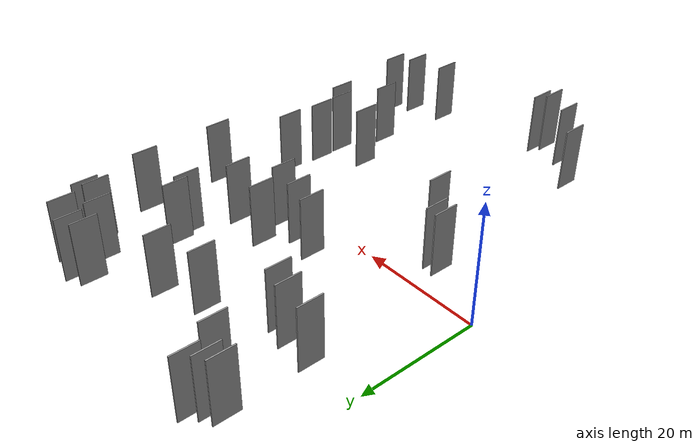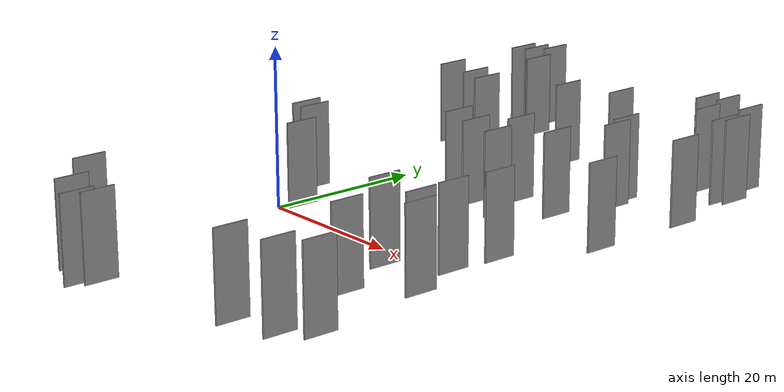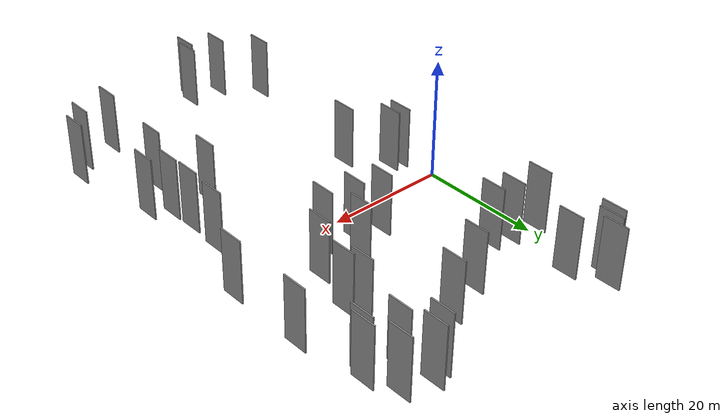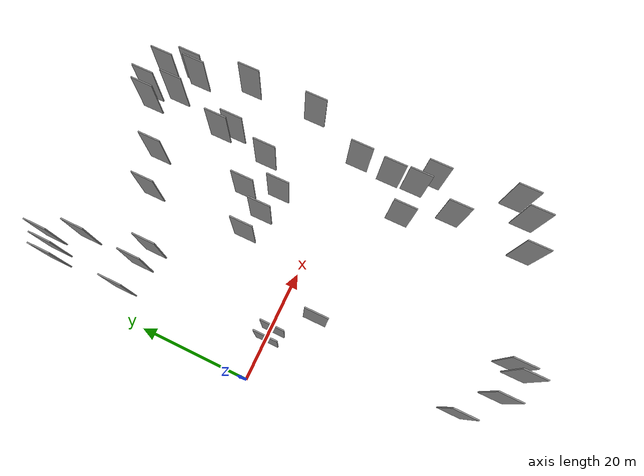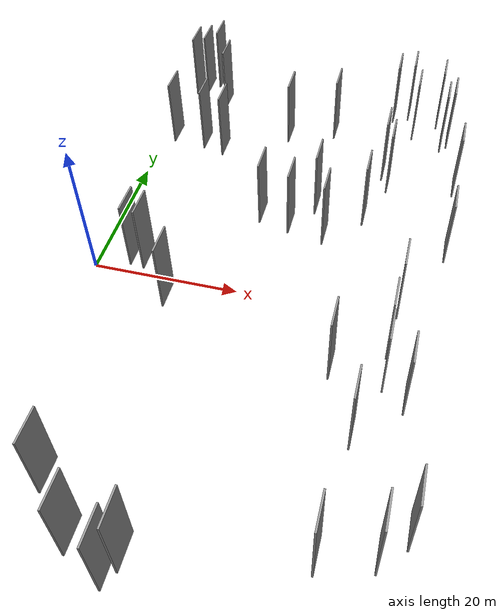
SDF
<sdf version="1.6">
 <world name="default">
  <scene>
   <sky><clouds><speed>12</speed></clouds></sky>
   <ambient>0.4 0.4 0.4 1</ambient>
   <background>0.7 0.7 0.7 1</background>
   <shadows>1</shadows>
  </scene>
  <gravity>0 0 -9.8066</gravity>
  <magnetic_field>6e-06 2.3e-05 -4.2e-05</magnetic_field>
  <physics default="0" name="default_physics" type="ode">
   <ode>
    <solver>
     <type>quick</type>
     <iters>10</iters>
     <sor>1.0</sor>
     <use_dynamic_moi_rescaling>0</use_dynamic_moi_rescaling>
    </solver>
    <constraints>
     <cfm>0</cfm>
     <erp>0.2</erp>
     <contact_max_correcting_vel>100</contact_max_correcting_vel>
     <contact_surface_layer>0.001</contact_surface_layer>
    </constraints>
   </ode>
   <max_step_size>0.004</max_step_size>
   <real_time_factor>1</real_time_factor>
   <real_time_update_rate>250</real_time_update_rate>
  </physics>
  <light name="sun" type="directional">
   <pose>0 0 10 0 0 0</pose>
   <diffuse>0.8 0.8 0.8 1</diffuse>
   <specular>0.2 0.2 0.2 1</specular>
   <attenuation>
    <range>1000</range>
    <constant>0.9</constant>
    <linear>0.01</linear>
    <quadratic>0.001</quadratic>
   </attenuation>
   <direction>-0.5 0.1 -0.9</direction>
  </light>
  <model name="grey_wall_1">
   <static>1</static>
   <pose>38.5039 -19.5926 5.0 0.000000 0.000000 1.570796</pose>
   <link name="link">
    <pose>0 0 5.00 0 0 0</pose>
    <collision name="collision"><geometry><box><size>4.00 0.2 10.00</size></box></geometry></collision>
    <visual name="visual">
     <cast_shadows>0</cast_shadows>
     <geometry><box><size>4.00 0.2 10.00</size></box></geometry>
     <material>
      <script>
       <uri>model://grey_wall/materials/scripts</uri>
       <uri>model://grey_wall/materials/textures</uri>
       <name>vrc/grey_wall</name>
      </script>
     </material>
    </visual>
   </link>
  </model>
  <model name="grey_wall_2">
   <static>1</static>
   <pose>34.5466 13.1071 5.0 0.000000 0.000000 1.570796</pose>
   <link name="link">
    <pose>0 0 5.00 0 0 0</pose>
    <collision name="collision"><geometry><box><size>4.00 0.2 10.00</size></box></geometry></collision>
    <visual name="visual">
     <cast_shadows>0</cast_shadows>
     <geometry><box><size>4.00 0.2 10.00</size></box></geometry>
     <material>
      <script>
       <uri>model://grey_wall/materials/scripts</uri>
       <uri>model://grey_wall/materials/textures</uri>
       <name>vrc/grey_wall</name>
      </script>
     </material>
    </visual>
   </link>
  </model>
  <model name="grey_wall_3">
   <static>1</static>
   <pose>36.7953 20.3044 5.0 0.000000 0.000000 1.570796</pose>
   <link name="link">
    <pose>0 0 5.00 0 0 0</pose>
    <collision name="collision"><geometry><box><size>4.00 0.2 10.00</size></box></geometry></collision>
    <visual name="visual">
     <cast_shadows>0</cast_shadows>
     <geometry><box><size>4.00 0.2 10.00</size></box></geometry>
     <material>
      <script>
       <uri>model://grey_wall/materials/scripts</uri>
       <uri>model://grey_wall/materials/textures</uri>
       <name>vrc/grey_wall</name>
      </script>
     </material>
    </visual>
   </link>
  </model>
  <model name="grey_wall_4">
   <static>1</static>
   <pose>45.8852 21.6320 5.0 0.000000 0.000000 1.570796</pose>
   <link name="link">
    <pose>0 0 5.00 0 0 0</pose>
    <collision name="collision"><geometry><box><size>4.00 0.2 10.00</size></box></geometry></collision>
    <visual name="visual">
     <cast_shadows>0</cast_shadows>
     <geometry><box><size>4.00 0.2 10.00</size></box></geometry>
     <material>
      <script>
       <uri>model://grey_wall/materials/scripts</uri>
       <uri>model://grey_wall/materials/textures</uri>
       <name>vrc/grey_wall</name>
      </script>
     </material>
    </visual>
   </link>
  </model>
  <model name="grey_wall_5">
   <static>1</static>
   <pose>40.8928 -11.9557 5.0 0.000000 0.000000 1.570796</pose>
   <link name="link">
    <pose>0 0 5.00 0 0 0</pose>
    <collision name="collision"><geometry><box><size>4.00 0.2 10.00</size></box></geometry></collision>
    <visual name="visual">
     <cast_shadows>0</cast_shadows>
     <geometry><box><size>4.00 0.2 10.00</size></box></geometry>
     <material>
      <script>
       <uri>model://grey_wall/materials/scripts</uri>
       <uri>model://grey_wall/materials/textures</uri>
       <name>vrc/grey_wall</name>
      </script>
     </material>
    </visual>
   </link>
  </model>
  <model name="grey_wall_6">
   <static>1</static>
   <pose>37.8231 37.6258 5.0 0.000000 0.000000 1.570796</pose>
   <link name="link">
    <pose>0 0 5.00 0 0 0</pose>
    <collision name="collision"><geometry><box><size>4.00 0.2 10.00</size></box></geometry></collision>
    <visual name="visual">
     <cast_shadows>0</cast_shadows>
     <geometry><box><size>4.00 0.2 10.00</size></box></geometry>
     <material>
      <script>
       <uri>model://grey_wall/materials/scripts</uri>
       <uri>model://grey_wall/materials/textures</uri>
       <name>vrc/grey_wall</name>
      </script>
     </material>
    </visual>
   </link>
  </model>
  <model name="grey_wall_7">
   <static>1</static>
   <pose>13.1941 -6.1867 5.0 0.000000 0.000000 1.570796</pose>
   <link name="link">
    <pose>0 0 5.00 0 0 0</pose>
    <collision name="collision"><geometry><box><size>4.00 0.2 10.00</size></box></geometry></collision>
    <visual name="visual">
     <cast_shadows>0</cast_shadows>
     <geometry><box><size>4.00 0.2 10.00</size></box></geometry>
     <material>
      <script>
       <uri>model://grey_wall/materials/scripts</uri>
       <uri>model://grey_wall/materials/textures</uri>
       <name>vrc/grey_wall</name>
      </script>
     </material>
    </visual>
   </link>
  </model>
  <model name="grey_wall_8">
   <static>1</static>
   <pose>45.8480 8.9419 5.0 0.000000 0.000000 1.570796</pose>
   <link name="link">
    <pose>0 0 5.00 0 0 0</pose>
    <collision name="collision"><geometry><box><size>4.00 0.2 10.00</size></box></geometry></collision>
    <visual name="visual">
     <cast_shadows>0</cast_shadows>
     <geometry><box><size>4.00 0.2 10.00</size></box></geometry>
     <material>
      <script>
       <uri>model://grey_wall/materials/scripts</uri>
       <uri>model://grey_wall/materials/textures</uri>
       <name>vrc/grey_wall</name>
      </script>
     </material>
    </visual>
   </link>
  </model>
  <model name="grey_wall_9">
   <static>1</static>
   <pose>3.7953 36.6565 5.0 0.000000 0.000000 1.570796</pose>
   <link name="link">
    <pose>0 0 5.00 0 0 0</pose>
    <collision name="collision"><geometry><box><size>4.00 0.2 10.00</size></box></geometry></collision>
    <visual name="visual">
     <cast_shadows>0</cast_shadows>
     <geometry><box><size>4.00 0.2 10.00</size></box></geometry>
     <material>
      <script>
       <uri>model://grey_wall/materials/scripts</uri>
       <uri>model://grey_wall/materials/textures</uri>
       <name>vrc/grey_wall</name>
      </script>
     </material>
    </visual>
   </link>
  </model>
  <model name="grey_wall_10">
   <static>1</static>
   <pose>5.3578 37.4840 5.0 0.000000 0.000000 1.570796</pose>
   <link name="link">
    <pose>0 0 5.00 0 0 0</pose>
    <collision name="collision"><geometry><box><size>4.00 0.2 10.00</size></box></geometry></collision>
    <visual name="visual">
     <cast_shadows>0</cast_shadows>
     <geometry><box><size>4.00 0.2 10.00</size></box></geometry>
     <material>
      <script>
       <uri>model://grey_wall/materials/scripts</uri>
       <uri>model://grey_wall/materials/textures</uri>
       <name>vrc/grey_wall</name>
      </script>
     </material>
    </visual>
   </link>
  </model>
  <model name="grey_wall_11">
   <static>1</static>
   <pose>20.8899 28.0818 5.0 0.000000 0.000000 1.570796</pose>
   <link name="link">
    <pose>0 0 5.00 0 0 0</pose>
    <collision name="collision"><geometry><box><size>4.00 0.2 10.00</size></box></geometry></collision>
    <visual name="visual">
     <cast_shadows>0</cast_shadows>
     <geometry><box><size>4.00 0.2 10.00</size></box></geometry>
     <material>
      <script>
       <uri>model://grey_wall/materials/scripts</uri>
       <uri>model://grey_wall/materials/textures</uri>
       <name>vrc/grey_wall</name>
      </script>
     </material>
    </visual>
   </link>
  </model>
  <model name="grey_wall_12">
   <static>1</static>
   <pose>41.1619 -1.4591 5.0 0.000000 0.000000 1.570796</pose>
   <link name="link">
    <pose>0 0 5.00 0 0 0</pose>
    <collision name="collision"><geometry><box><size>4.00 0.2 10.00</size></box></geometry></collision>
    <visual name="visual">
     <cast_shadows>0</cast_shadows>
     <geometry><box><size>4.00 0.2 10.00</size></box></geometry>
     <material>
      <script>
       <uri>model://grey_wall/materials/scripts</uri>
       <uri>model://grey_wall/materials/textures</uri>
       <name>vrc/grey_wall</name>
      </script>
     </material>
    </visual>
   </link>
  </model>
  <model name="grey_wall_13">
   <static>1</static>
   <pose>6.8805 -0.6908 5.0 0.000000 0.000000 1.570796</pose>
   <link name="link">
    <pose>0 0 5.00 0 0 0</pose>
    <collision name="collision"><geometry><box><size>4.00 0.2 10.00</size></box></geometry></collision>
    <visual name="visual">
     <cast_shadows>0</cast_shadows>
     <geometry><box><size>4.00 0.2 10.00</size></box></geometry>
     <material>
      <script>
       <uri>model://grey_wall/materials/scripts</uri>
       <uri>model://grey_wall/materials/textures</uri>
       <name>vrc/grey_wall</name>
      </script>
     </material>
    </visual>
   </link>
  </model>
  <model name="grey_wall_14">
   <static>1</static>
   <pose>29.9711 8.4154 5.0 0.000000 0.000000 1.570796</pose>
   <link name="link">
    <pose>0 0 5.00 0 0 0</pose>
    <collision name="collision"><geometry><box><size>4.00 0.2 10.00</size></box></geometry></collision>
    <visual name="visual">
     <cast_shadows>0</cast_shadows>
     <geometry><box><size>4.00 0.2 10.00</size></box></geometry>
     <material>
      <script>
       <uri>model://grey_wall/materials/scripts</uri>
       <uri>model://grey_wall/materials/textures</uri>
       <name>vrc/grey_wall</name>
      </script>
     </material>
    </visual>
   </link>
  </model>
  <model name="grey_wall_15">
   <static>1</static>
   <pose>27.9159 13.8105 5.0 0.000000 0.000000 1.570796</pose>
   <link name="link">
    <pose>0 0 5.00 0 0 0</pose>
    <collision name="collision"><geometry><box><size>4.00 0.2 10.00</size></box></geometry></collision>
    <visual name="visual">
     <cast_shadows>0</cast_shadows>
     <geometry><box><size>4.00 0.2 10.00</size></box></geometry>
     <material>
      <script>
       <uri>model://grey_wall/materials/scripts</uri>
       <uri>model://grey_wall/materials/textures</uri>
       <name>vrc/grey_wall</name>
      </script>
     </material>
    </visual>
   </link>
  </model>
  <model name="grey_wall_16">
   <static>1</static>
   <pose>19.8037 -36.8037 5.0 0.000000 0.000000 1.570796</pose>
   <link name="link">
    <pose>0 0 5.00 0 0 0</pose>
    <collision name="collision"><geometry><box><size>4.00 0.2 10.00</size></box></geometry></collision>
    <visual name="visual">
     <cast_shadows>0</cast_shadows>
     <geometry><box><size>4.00 0.2 10.00</size></box></geometry>
     <material>
      <script>
       <uri>model://grey_wall/materials/scripts</uri>
       <uri>model://grey_wall/materials/textures</uri>
       <name>vrc/grey_wall</name>
      </script>
     </material>
    </visual>
   </link>
  </model>
  <model name="grey_wall_17">
   <static>1</static>
   <pose>6.8045 39.3123 5.0 0.000000 0.000000 1.570796</pose>
   <link name="link">
    <pose>0 0 5.00 0 0 0</pose>
    <collision name="collision"><geometry><box><size>4.00 0.2 10.00</size></box></geometry></collision>
    <visual name="visual">
     <cast_shadows>0</cast_shadows>
     <geometry><box><size>4.00 0.2 10.00</size></box></geometry>
     <material>
      <script>
       <uri>model://grey_wall/materials/scripts</uri>
       <uri>model://grey_wall/materials/textures</uri>
       <name>vrc/grey_wall</name>
      </script>
     </material>
    </visual>
   </link>
  </model>
  <model name="grey_wall_18">
   <static>1</static>
   <pose>14.3044 -36.5079 5.0 0.000000 0.000000 1.570796</pose>
   <link name="link">
    <pose>0 0 5.00 0 0 0</pose>
    <collision name="collision"><geometry><box><size>4.00 0.2 10.00</size></box></geometry></collision>
    <visual name="visual">
     <cast_shadows>0</cast_shadows>
     <geometry><box><size>4.00 0.2 10.00</size></box></geometry>
     <material>
      <script>
       <uri>model://grey_wall/materials/scripts</uri>
       <uri>model://grey_wall/materials/textures</uri>
       <name>vrc/grey_wall</name>
      </script>
     </material>
    </visual>
   </link>
  </model>
  <model name="grey_wall_19">
   <static>1</static>
   <pose>34.7449 -11.7049 5.0 0.000000 0.000000 1.570796</pose>
   <link name="link">
    <pose>0 0 5.00 0 0 0</pose>
    <collision name="collision"><geometry><box><size>4.00 0.2 10.00</size></box></geometry></collision>
    <visual name="visual">
     <cast_shadows>0</cast_shadows>
     <geometry><box><size>4.00 0.2 10.00</size></box></geometry>
     <material>
      <script>
       <uri>model://grey_wall/materials/scripts</uri>
       <uri>model://grey_wall/materials/textures</uri>
       <name>vrc/grey_wall</name>
      </script>
     </material>
    </visual>
   </link>
  </model>
  <model name="grey_wall_20">
   <static>1</static>
   <pose>35.8047 22.7288 5.0 0.000000 0.000000 1.570796</pose>
   <link name="link">
    <pose>0 0 5.00 0 0 0</pose>
    <collision name="collision"><geometry><box><size>4.00 0.2 10.00</size></box></geometry></collision>
    <visual name="visual">
     <cast_shadows>0</cast_shadows>
     <geometry><box><size>4.00 0.2 10.00</size></box></geometry>
     <material>
      <script>
       <uri>model://grey_wall/materials/scripts</uri>
       <uri>model://grey_wall/materials/textures</uri>
       <name>vrc/grey_wall</name>
      </script>
     </material>
    </visual>
   </link>
  </model>
  <model name="grey_wall_21">
   <static>1</static>
   <pose>4.2164 24.2706 5.0 0.000000 0.000000 1.570796</pose>
   <link name="link">
    <pose>0 0 5.00 0 0 0</pose>
    <collision name="collision"><geometry><box><size>4.00 0.2 10.00</size></box></geometry></collision>
    <visual name="visual">
     <cast_shadows>0</cast_shadows>
     <geometry><box><size>4.00 0.2 10.00</size></box></geometry>
     <material>
      <script>
       <uri>model://grey_wall/materials/scripts</uri>
       <uri>model://grey_wall/materials/textures</uri>
       <name>vrc/grey_wall</name>
      </script>
     </material>
    </visual>
   </link>
  </model>
  <model name="grey_wall_22">
   <static>1</static>
   <pose>42.2823 36.4252 5.0 0.000000 0.000000 1.570796</pose>
   <link name="link">
    <pose>0 0 5.00 0 0 0</pose>
    <collision name="collision"><geometry><box><size>4.00 0.2 10.00</size></box></geometry></collision>
    <visual name="visual">
     <cast_shadows>0</cast_shadows>
     <geometry><box><size>4.00 0.2 10.00</size></box></geometry>
     <material>
      <script>
       <uri>model://grey_wall/materials/scripts</uri>
       <uri>model://grey_wall/materials/textures</uri>
       <name>vrc/grey_wall</name>
      </script>
     </material>
    </visual>
   </link>
  </model>
  <model name="grey_wall_23">
   <static>1</static>
   <pose>43.2821 30.8727 5.0 0.000000 0.000000 1.570796</pose>
   <link name="link">
    <pose>0 0 5.00 0 0 0</pose>
    <collision name="collision"><geometry><box><size>4.00 0.2 10.00</size></box></geometry></collision>
    <visual name="visual">
     <cast_shadows>0</cast_shadows>
     <geometry><box><size>4.00 0.2 10.00</size></box></geometry>
     <material>
      <script>
       <uri>model://grey_wall/materials/scripts</uri>
       <uri>model://grey_wall/materials/textures</uri>
       <name>vrc/grey_wall</name>
      </script>
     </material>
    </visual>
   </link>
  </model>
  <model name="grey_wall_24">
   <static>1</static>
   <pose>38.9521 32.8615 5.0 0.000000 0.000000 1.570796</pose>
   <link name="link">
    <pose>0 0 5.00 0 0 0</pose>
    <collision name="collision"><geometry><box><size>4.00 0.2 10.00</size></box></geometry></collision>
    <visual name="visual">
     <cast_shadows>0</cast_shadows>
     <geometry><box><size>4.00 0.2 10.00</size></box></geometry>
     <material>
      <script>
       <uri>model://grey_wall/materials/scripts</uri>
       <uri>model://grey_wall/materials/textures</uri>
       <name>vrc/grey_wall</name>
      </script>
     </material>
    </visual>
   </link>
  </model>
  <model name="grey_wall_25">
   <static>1</static>
   <pose>27.4259 30.4833 5.0 0.000000 0.000000 1.570796</pose>
   <link name="link">
    <pose>0 0 5.00 0 0 0</pose>
    <collision name="collision"><geometry><box><size>4.00 0.2 10.00</size></box></geometry></collision>
    <visual name="visual">
     <cast_shadows>0</cast_shadows>
     <geometry><box><size>4.00 0.2 10.00</size></box></geometry>
     <material>
      <script>
       <uri>model://grey_wall/materials/scripts</uri>
       <uri>model://grey_wall/materials/textures</uri>
       <name>vrc/grey_wall</name>
      </script>
     </material>
    </visual>
   </link>
  </model>
  <model name="grey_wall_26">
   <static>1</static>
   <pose>12.0566 22.8626 5.0 0.000000 0.000000 1.570796</pose>
   <link name="link">
    <pose>0 0 5.00 0 0 0</pose>
    <collision name="collision"><geometry><box><size>4.00 0.2 10.00</size></box></geometry></collision>
    <visual name="visual">
     <cast_shadows>0</cast_shadows>
     <geometry><box><size>4.00 0.2 10.00</size></box></geometry>
     <material>
      <script>
       <uri>model://grey_wall/materials/scripts</uri>
       <uri>model://grey_wall/materials/textures</uri>
       <name>vrc/grey_wall</name>
      </script>
     </material>
    </visual>
   </link>
  </model>
  <model name="grey_wall_27">
   <static>1</static>
   <pose>21.0390 10.4788 5.0 0.000000 0.000000 1.570796</pose>
   <link name="link">
    <pose>0 0 5.00 0 0 0</pose>
    <collision name="collision"><geometry><box><size>4.00 0.2 10.00</size></box></geometry></collision>
    <visual name="visual">
     <cast_shadows>0</cast_shadows>
     <geometry><box><size>4.00 0.2 10.00</size></box></geometry>
     <material>
      <script>
       <uri>model://grey_wall/materials/scripts</uri>
       <uri>model://grey_wall/materials/textures</uri>
       <name>vrc/grey_wall</name>
      </script>
     </material>
    </visual>
   </link>
  </model>
  <model name="grey_wall_28">
   <static>1</static>
   <pose>45.7902 -28.5752 5.0 0.000000 0.000000 1.570796</pose>
   <link name="link">
    <pose>0 0 5.00 0 0 0</pose>
    <collision name="collision"><geometry><box><size>4.00 0.2 10.00</size></box></geometry></collision>
    <visual name="visual">
     <cast_shadows>0</cast_shadows>
     <geometry><box><size>4.00 0.2 10.00</size></box></geometry>
     <material>
      <script>
       <uri>model://grey_wall/materials/scripts</uri>
       <uri>model://grey_wall/materials/textures</uri>
       <name>vrc/grey_wall</name>
      </script>
     </material>
    </visual>
   </link>
  </model>
  <model name="grey_wall_29">
   <static>1</static>
   <pose>18.8615 -38.6530 5.0 0.000000 0.000000 1.570796</pose>
   <link name="link">
    <pose>0 0 5.00 0 0 0</pose>
    <collision name="collision"><geometry><box><size>4.00 0.2 10.00</size></box></geometry></collision>
    <visual name="visual">
     <cast_shadows>0</cast_shadows>
     <geometry><box><size>4.00 0.2 10.00</size></box></geometry>
     <material>
      <script>
       <uri>model://grey_wall/materials/scripts</uri>
       <uri>model://grey_wall/materials/textures</uri>
       <name>vrc/grey_wall</name>
      </script>
     </material>
    </visual>
   </link>
  </model>
  <model name="grey_wall_30">
   <static>1</static>
   <pose>25.1747 9.4178 5.0 0.000000 0.000000 1.570796</pose>
   <link name="link">
    <pose>0 0 5.00 0 0 0</pose>
    <collision name="collision"><geometry><box><size>4.00 0.2 10.00</size></box></geometry></collision>
    <visual name="visual">
     <cast_shadows>0</cast_shadows>
     <geometry><box><size>4.00 0.2 10.00</size></box></geometry>
     <material>
      <script>
       <uri>model://grey_wall/materials/scripts</uri>
       <uri>model://grey_wall/materials/textures</uri>
       <name>vrc/grey_wall</name>
      </script>
     </material>
    </visual>
   </link>
  </model>
  <model name="grey_wall_31">
   <static>1</static>
   <pose>9.3220 -31.4059 5.0 0.000000 0.000000 1.570796</pose>
   <link name="link">
    <pose>0 0 5.00 0 0 0</pose>
    <collision name="collision"><geometry><box><size>4.00 0.2 10.00</size></box></geometry></collision>
    <visual name="visual">
     <cast_shadows>0</cast_shadows>
     <geometry><box><size>4.00 0.2 10.00</size></box></geometry>
     <material>
      <script>
       <uri>model://grey_wall/materials/scripts</uri>
       <uri>model://grey_wall/materials/textures</uri>
       <name>vrc/grey_wall</name>
      </script>
     </material>
    </visual>
   </link>
  </model>
  <model name="grey_wall_32">
   <static>1</static>
   <pose>44.1743 32.0770 5.0 0.000000 0.000000 1.570796</pose>
   <link name="link">
    <pose>0 0 5.00 0 0 0</pose>
    <collision name="collision"><geometry><box><size>4.00 0.2 10.00</size></box></geometry></collision>
    <visual name="visual">
     <cast_shadows>0</cast_shadows>
     <geometry><box><size>4.00 0.2 10.00</size></box></geometry>
     <material>
      <script>
       <uri>model://grey_wall/materials/scripts</uri>
       <uri>model://grey_wall/materials/textures</uri>
       <name>vrc/grey_wall</name>
      </script>
     </material>
    </visual>
   </link>
  </model>
  <model name="grey_wall_33">
   <static>1</static>
   <pose>37.4686 -32.9241 5.0 0.000000 0.000000 1.570796</pose>
   <link name="link">
    <pose>0 0 5.00 0 0 0</pose>
    <collision name="collision"><geometry><box><size>4.00 0.2 10.00</size></box></geometry></collision>
    <visual name="visual">
     <cast_shadows>0</cast_shadows>
     <geometry><box><size>4.00 0.2 10.00</size></box></geometry>
     <material>
      <script>
       <uri>model://grey_wall/materials/scripts</uri>
       <uri>model://grey_wall/materials/textures</uri>
       <name>vrc/grey_wall</name>
      </script>
     </material>
    </visual>
   </link>
  </model>
  <model name="grey_wall_34">
   <static>1</static>
   <pose>9.3361 34.0387 5.0 0.000000 0.000000 1.570796</pose>
   <link name="link">
    <pose>0 0 5.00 0 0 0</pose>
    <collision name="collision"><geometry><box><size>4.00 0.2 10.00</size></box></geometry></collision>
    <visual name="visual">
     <cast_shadows>0</cast_shadows>
     <geometry><box><size>4.00 0.2 10.00</size></box></geometry>
     <material>
      <script>
       <uri>model://grey_wall/materials/scripts</uri>
       <uri>model://grey_wall/materials/textures</uri>
       <name>vrc/grey_wall</name>
      </script>
     </material>
    </visual>
   </link>
  </model>
  <model name="grey_wall_35">
   <static>1</static>
   <pose>43.1391 -31.4313 5.0 0.000000 0.000000 1.570796</pose>
   <link name="link">
    <pose>0 0 5.00 0 0 0</pose>
    <collision name="collision"><geometry><box><size>4.00 0.2 10.00</size></box></geometry></collision>
    <visual name="visual">
     <cast_shadows>0</cast_shadows>
     <geometry><box><size>4.00 0.2 10.00</size></box></geometry>
     <material>
      <script>
       <uri>model://grey_wall/materials/scripts</uri>
       <uri>model://grey_wall/materials/textures</uri>
       <name>vrc/grey_wall</name>
      </script>
     </material>
    </visual>
   </link>
  </model>
  <model name="grey_wall_36">
   <static>1</static>
   <pose>40.7373 -7.4936 5.0 0.000000 0.000000 1.570796</pose>
   <link name="link">
    <pose>0 0 5.00 0 0 0</pose>
    <collision name="collision"><geometry><box><size>4.00 0.2 10.00</size></box></geometry></collision>
    <visual name="visual">
     <cast_shadows>0</cast_shadows>
     <geometry><box><size>4.00 0.2 10.00</size></box></geometry>
     <material>
      <script>
       <uri>model://grey_wall/materials/scripts</uri>
       <uri>model://grey_wall/materials/textures</uri>
       <name>vrc/grey_wall</name>
      </script>
     </material>
    </visual>
   </link>
  </model>
  <model name="grey_wall_37">
   <static>1</static>
   <pose>8.9834 23.7383 5.0 0.000000 0.000000 1.570796</pose>
   <link name="link">
    <pose>0 0 5.00 0 0 0</pose>
    <collision name="collision"><geometry><box><size>4.00 0.2 10.00</size></box></geometry></collision>
    <visual name="visual">
     <cast_shadows>0</cast_shadows>
     <geometry><box><size>4.00 0.2 10.00</size></box></geometry>
     <material>
      <script>
       <uri>model://grey_wall/materials/scripts</uri>
       <uri>model://grey_wall/materials/textures</uri>
       <name>vrc/grey_wall</name>
      </script>
     </material>
    </visual>
   </link>
  </model>
  <model name="grey_wall_38">
   <static>1</static>
   <pose>8.7151 -0.9438 5.0 0.000000 0.000000 1.570796</pose>
   <link name="link">
    <pose>0 0 5.00 0 0 0</pose>
    <collision name="collision"><geometry><box><size>4.00 0.2 10.00</size></box></geometry></collision>
    <visual name="visual">
     <cast_shadows>0</cast_shadows>
     <geometry><box><size>4.00 0.2 10.00</size></box></geometry>
     <material>
      <script>
       <uri>model://grey_wall/materials/scripts</uri>
       <uri>model://grey_wall/materials/textures</uri>
       <name>vrc/grey_wall</name>
      </script>
     </material>
    </visual>
   </link>
  </model>
  <model name="grey_wall_39">
   <static>1</static>
   <pose>35.6251 36.5345 5.0 0.000000 0.000000 1.570796</pose>
   <link name="link">
    <pose>0 0 5.00 0 0 0</pose>
    <collision name="collision"><geometry><box><size>4.00 0.2 10.00</size></box></geometry></collision>
    <visual name="visual">
     <cast_shadows>0</cast_shadows>
     <geometry><box><size>4.00 0.2 10.00</size></box></geometry>
     <material>
      <script>
       <uri>model://grey_wall/materials/scripts</uri>
       <uri>model://grey_wall/materials/textures</uri>
       <name>vrc/grey_wall</name>
      </script>
     </material>
    </visual>
   </link>
  </model>
  <model name="grey_wall_40">
   <static>1</static>
   <pose>43.5203 -14.2364 5.0 0.000000 0.000000 1.570796</pose>
   <link name="link">
    <pose>0 0 5.00 0 0 0</pose>
    <collision name="collision"><geometry><box><size>4.00 0.2 10.00</size></box></geometry></collision>
    <visual name="visual">
     <cast_shadows>0</cast_shadows>
     <geometry><box><size>4.00 0.2 10.00</size></box></geometry>
     <material>
      <script>
       <uri>model://grey_wall/materials/scripts</uri>
       <uri>model://grey_wall/materials/textures</uri>
       <name>vrc/grey_wall</name>
      </script>
     </material>
    </visual>
   </link>
  </model>
 </world>
</sdf>
